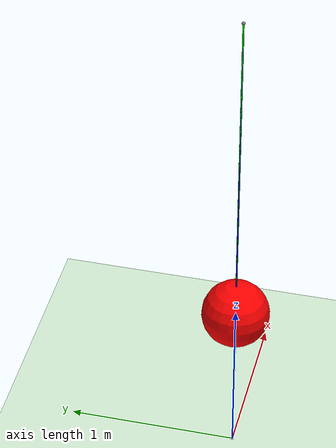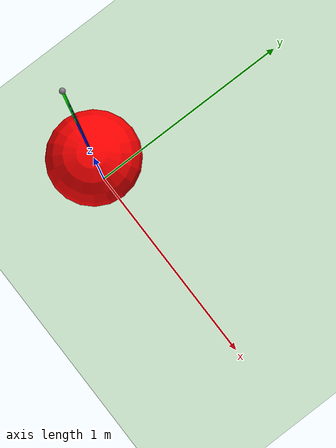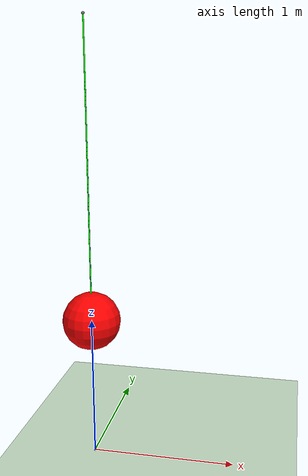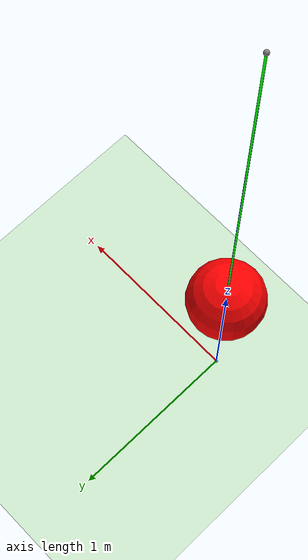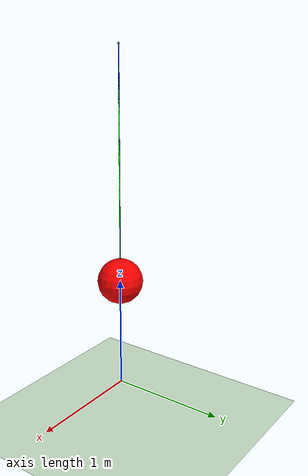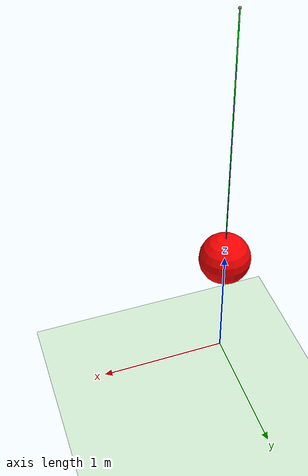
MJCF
<?xml version="1.0" ?>
<!-- |    This document was autogenerated by xacro from /home/lucas/UTFPR/IC/ic2022/ic_git/conical_pendulum_MJCF/model/pendulum.xacro | -->
<!-- |    EDITING THIS FILE BY HAND IS NOT RECOMMENDED                                 | -->
<mujoco model="conical_pendulum">
  <asset>
    <texture builtin="checker" height="100" name="texplane" rgb1="0 0 0" rgb2="0.8 0.8 0.8" type="2d" width="100"/>
    <material name="MatPlane" reflectance="0.5" shininess="1" specular="1" texrepeat="2 2" texture="texplane"/>
  </asset>
  <option integrator="RK4" iterations="50" solver="PGS" timestep="0.003">
  </option>
  <worldbody>
    <light cutoff="100" diffuse="1 1 1" dir="-0 0 -1.3" directional="true" exponent="1" pos="0 0 1.3" specular=".1 .1 .1"/>
    <geom condim="3" friction="1 .1 .1" material="MatPlane" name="floor" pos="0 0 0" rgba="0.8 0.9 0.8 1" size="2 2 0.125" type="plane"/>
    <body name="link_rope" pos="0 0 3">
      <site name="end1" pos="0 0 0" size="0.01" type="sphere"/>
      <body name="esfera" pos="0 0 -2">
        <site name="end2" pos="0 0 0" size="0.01" type="sphere"/>
        <joint axis="1 0 0" damping="0.1" name="amarraX" pos="0 0 2" type="hinge"/>
        <joint axis="0 1 0" damping="0.1" name="amarraY" pos="0 0 2" type="hinge"/>
        <joint axis="0 0 1" damping="0.1" name="amarraZ" pos="0 0 2" type="hinge"/>
        <geom name="sphere_geom" rgba="1 0 0 1" size="0.2" type="sphere"/>
        <inertial diaginertia="16.000000000000004 16.000000000000004 16.000000000000004" mass="1000" pos="0 0 0"/>
      </body>
    </body>
    <site name="end3" pos="0 0 0" size="0.01" type="sphere"/>
  </worldbody>
  <actuator>
    <motor joint="amarraX" name="aX"/>
    <motor joint="amarraY" name="aY"/>
    <motor joint="amarraZ" name="aZ"/>
  </actuator>
  <tendon>
    <spatial limited="false" range="0 0.6" rgba="0 1 0 1" width="0.005">
      <site site="end1"/>
      <site site="end2"/>
    </spatial>
  </tendon>
  <tendon>
    <spatial limited="false" rgba="0 0 1 1" width="0.005">
      <site site="end1"/>
      <site site="end3"/>
    </spatial>
  </tendon>
</mujoco>
